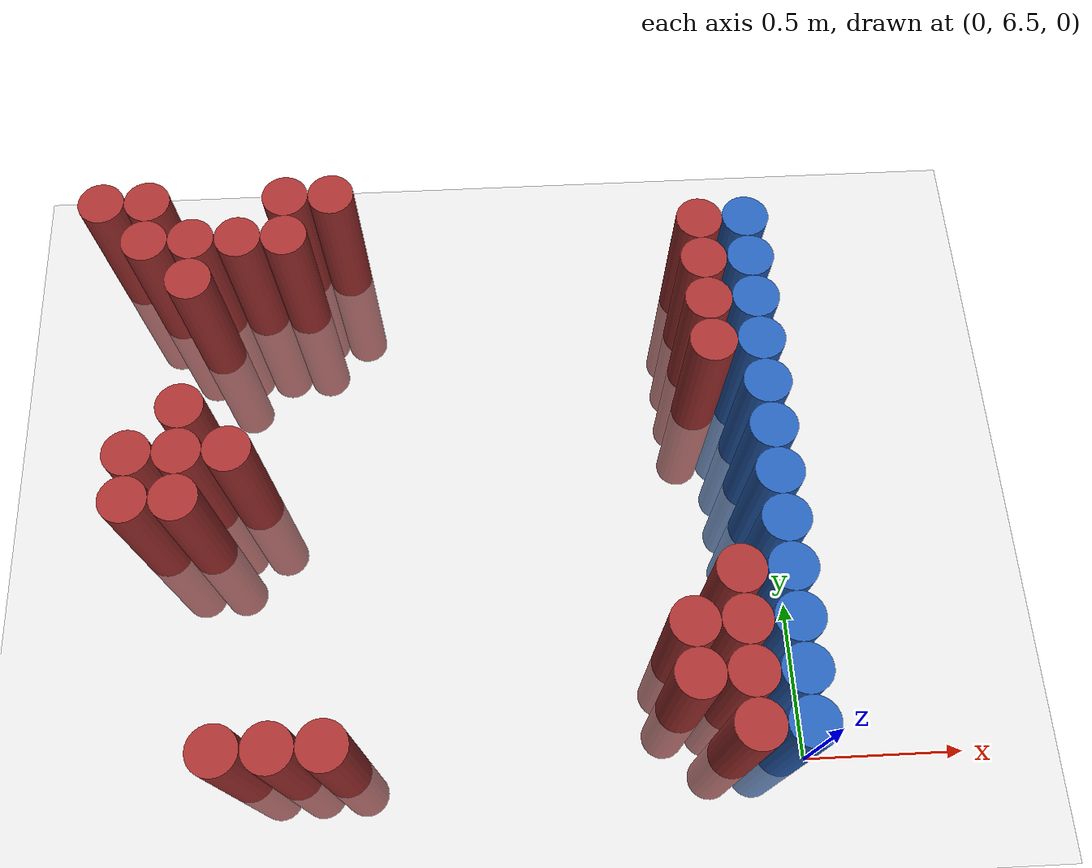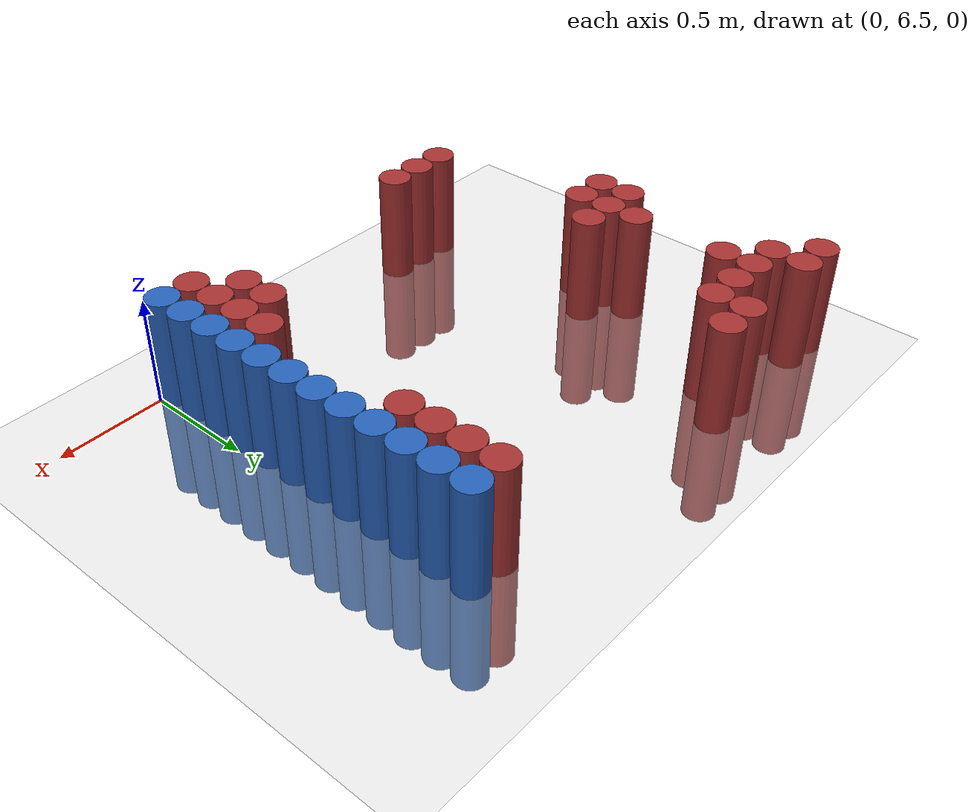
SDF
<sdf version="1.6">
 <world name="default">
  <model name="ground_plane">
   <static>1</static>
   <link name="link">
    <collision name="collision">
     <geometry><plane><normal>0 0 1</normal><size>100 100</size></plane></geometry>
     <surface><friction><ode><mu>100</mu><mu2>50</mu2></ode></friction></surface>
    </collision>
    <visual name="visual">
     <cast_shadows>0</cast_shadows>
     <geometry><plane><normal>0 0 1</normal><size>100 100</size></plane></geometry>
     <material>
      <script><uri>file://media/materials/scripts/gazebo.material</uri><name>Gazebo/Grey</name></script>
     </material>
    </visual>
   </link>
  </model>
  <model name="unit_cylinder_223">
   <static>1</static>
   <pose>-2.175000 8.325000 0.000000 0.000000 0.000000 0.000000</pose>
   <link name="link">
    <inertial>
     <mass>1</mass>
     <inertia><ixx>0.145833</ixx><ixy>0</ixy><ixz>0</ixz><iyy>0.145833</iyy><iyz>0</iyz><izz>0.125</izz></inertia>
    </inertial>
    <collision name="collision">
     <geometry><cylinder><radius>0.075000</radius><length>1</length></cylinder></geometry>
    </collision>
    <visual name="visual">
     <geometry><cylinder><radius>0.075000</radius><length>1</length></cylinder></geometry>
     <material>
      <ambient>0.648000 0.192000 0.192000 1</ambient>
      <diffuse>0.648000 0.192000 0.192000 1</diffuse>
     </material>
     <material>
      <script><name>Gazebo/Grey</name><uri>file://media/materials/scripts/gazebo.material</uri></script>
     </material>
    </visual>
    <sensor name="sensor_contact" type="contact"><contact><collision>collision</collision></contact></sensor>
   </link>
   <plugin filename="gz-sim-touchplugin-system" name="gz::sim::systems::TouchPlugin">
    <target>robot</target>
    <namespace>robot</namespace>
    <time>0.001</time>
    <enabled>true</enabled>
   </plugin>
  </model>
  <model name="unit_cylinder_227">
   <static>1</static>
   <pose>-2.025000 7.275000 0.000000 0.000000 0.000000 0.000000</pose>
   <link name="link">
    <inertial>
     <mass>1</mass>
     <inertia><ixx>0.145833</ixx><ixy>0</ixy><ixz>0</ixz><iyy>0.145833</iyy><iyz>0</iyz><izz>0.125</izz></inertia>
    </inertial>
    <collision name="collision">
     <geometry><cylinder><radius>0.075000</radius><length>1</length></cylinder></geometry>
    </collision>
    <visual name="visual">
     <geometry><cylinder><radius>0.075000</radius><length>1</length></cylinder></geometry>
     <material>
      <ambient>0.648000 0.192000 0.192000 1</ambient>
      <diffuse>0.648000 0.192000 0.192000 1</diffuse>
     </material>
     <material>
      <script><name>Gazebo/Grey</name><uri>file://media/materials/scripts/gazebo.material</uri></script>
     </material>
    </visual>
    <sensor name="sensor_contact" type="contact"><contact><collision>collision</collision></contact></sensor>
   </link>
   <plugin filename="gz-sim-touchplugin-system" name="gz::sim::systems::TouchPlugin">
    <target>robot</target>
    <namespace>robot</namespace>
    <time>0.001</time>
    <enabled>true</enabled>
   </plugin>
  </model>
  <model name="unit_cylinder_228">
   <static>1</static>
   <pose>-2.025000 7.425000 0.000000 0.000000 0.000000 0.000000</pose>
   <link name="link">
    <inertial>
     <mass>1</mass>
     <inertia><ixx>0.145833</ixx><ixy>0</ixy><ixz>0</ixz><iyy>0.145833</iyy><iyz>0</iyz><izz>0.125</izz></inertia>
    </inertial>
    <collision name="collision">
     <geometry><cylinder><radius>0.075000</radius><length>1</length></cylinder></geometry>
    </collision>
    <visual name="visual">
     <geometry><cylinder><radius>0.075000</radius><length>1</length></cylinder></geometry>
     <material>
      <ambient>0.648000 0.192000 0.192000 1</ambient>
      <diffuse>0.648000 0.192000 0.192000 1</diffuse>
     </material>
     <material>
      <script><name>Gazebo/Grey</name><uri>file://media/materials/scripts/gazebo.material</uri></script>
     </material>
    </visual>
    <sensor name="sensor_contact" type="contact"><contact><collision>collision</collision></contact></sensor>
   </link>
   <plugin filename="gz-sim-touchplugin-system" name="gz::sim::systems::TouchPlugin">
    <target>robot</target>
    <namespace>robot</namespace>
    <time>0.001</time>
    <enabled>true</enabled>
   </plugin>
  </model>
  <model name="unit_cylinder_229">
   <static>1</static>
   <pose>-2.025000 8.175000 0.000000 0.000000 0.000000 0.000000</pose>
   <link name="link">
    <inertial>
     <mass>1</mass>
     <inertia><ixx>0.145833</ixx><ixy>0</ixy><ixz>0</ixz><iyy>0.145833</iyy><iyz>0</iyz><izz>0.125</izz></inertia>
    </inertial>
    <collision name="collision">
     <geometry><cylinder><radius>0.075000</radius><length>1</length></cylinder></geometry>
    </collision>
    <visual name="visual">
     <geometry><cylinder><radius>0.075000</radius><length>1</length></cylinder></geometry>
     <material>
      <ambient>0.648000 0.192000 0.192000 1</ambient>
      <diffuse>0.648000 0.192000 0.192000 1</diffuse>
     </material>
     <material>
      <script><name>Gazebo/Grey</name><uri>file://media/materials/scripts/gazebo.material</uri></script>
     </material>
    </visual>
    <sensor name="sensor_contact" type="contact"><contact><collision>collision</collision></contact></sensor>
   </link>
   <plugin filename="gz-sim-touchplugin-system" name="gz::sim::systems::TouchPlugin">
    <target>robot</target>
    <namespace>robot</namespace>
    <time>0.001</time>
    <enabled>true</enabled>
   </plugin>
  </model>
  <model name="unit_cylinder_230">
   <static>1</static>
   <pose>-2.025000 8.325000 0.000000 0.000000 0.000000 0.000000</pose>
   <link name="link">
    <inertial>
     <mass>1</mass>
     <inertia><ixx>0.145833</ixx><ixy>0</ixy><ixz>0</ixz><iyy>0.145833</iyy><iyz>0</iyz><izz>0.125</izz></inertia>
    </inertial>
    <collision name="collision">
     <geometry><cylinder><radius>0.075000</radius><length>1</length></cylinder></geometry>
    </collision>
    <visual name="visual">
     <geometry><cylinder><radius>0.075000</radius><length>1</length></cylinder></geometry>
     <material>
      <ambient>0.648000 0.192000 0.192000 1</ambient>
      <diffuse>0.648000 0.192000 0.192000 1</diffuse>
     </material>
     <material>
      <script><name>Gazebo/Grey</name><uri>file://media/materials/scripts/gazebo.material</uri></script>
     </material>
    </visual>
    <sensor name="sensor_contact" type="contact"><contact><collision>collision</collision></contact></sensor>
   </link>
   <plugin filename="gz-sim-touchplugin-system" name="gz::sim::systems::TouchPlugin">
    <target>robot</target>
    <namespace>robot</namespace>
    <time>0.001</time>
    <enabled>true</enabled>
   </plugin>
  </model>
  <model name="unit_cylinder_236">
   <static>1</static>
   <pose>-1.875000 7.275000 0.000000 0.000000 0.000000 0.000000</pose>
   <link name="link">
    <inertial>
     <mass>1</mass>
     <inertia><ixx>0.145833</ixx><ixy>0</ixy><ixz>0</ixz><iyy>0.145833</iyy><iyz>0</iyz><izz>0.125</izz></inertia>
    </inertial>
    <collision name="collision">
     <geometry><cylinder><radius>0.075000</radius><length>1</length></cylinder></geometry>
    </collision>
    <visual name="visual">
     <geometry><cylinder><radius>0.075000</radius><length>1</length></cylinder></geometry>
     <material>
      <ambient>0.648000 0.192000 0.192000 1</ambient>
      <diffuse>0.648000 0.192000 0.192000 1</diffuse>
     </material>
     <material>
      <script><name>Gazebo/Grey</name><uri>file://media/materials/scripts/gazebo.material</uri></script>
     </material>
    </visual>
    <sensor name="sensor_contact" type="contact"><contact><collision>collision</collision></contact></sensor>
   </link>
   <plugin filename="gz-sim-touchplugin-system" name="gz::sim::systems::TouchPlugin">
    <target>robot</target>
    <namespace>robot</namespace>
    <time>0.001</time>
    <enabled>true</enabled>
   </plugin>
  </model>
  <model name="unit_cylinder_237">
   <static>1</static>
   <pose>-1.875000 7.425000 0.000000 0.000000 0.000000 0.000000</pose>
   <link name="link">
    <inertial>
     <mass>1</mass>
     <inertia><ixx>0.145833</ixx><ixy>0</ixy><ixz>0</ixz><iyy>0.145833</iyy><iyz>0</iyz><izz>0.125</izz></inertia>
    </inertial>
    <collision name="collision">
     <geometry><cylinder><radius>0.075000</radius><length>1</length></cylinder></geometry>
    </collision>
    <visual name="visual">
     <geometry><cylinder><radius>0.075000</radius><length>1</length></cylinder></geometry>
     <material>
      <ambient>0.648000 0.192000 0.192000 1</ambient>
      <diffuse>0.648000 0.192000 0.192000 1</diffuse>
     </material>
     <material>
      <script><name>Gazebo/Grey</name><uri>file://media/materials/scripts/gazebo.material</uri></script>
     </material>
    </visual>
    <sensor name="sensor_contact" type="contact"><contact><collision>collision</collision></contact></sensor>
   </link>
   <plugin filename="gz-sim-touchplugin-system" name="gz::sim::systems::TouchPlugin">
    <target>robot</target>
    <namespace>robot</namespace>
    <time>0.001</time>
    <enabled>true</enabled>
   </plugin>
  </model>
  <model name="unit_cylinder_238">
   <static>1</static>
   <pose>-1.875000 7.575000 0.000000 0.000000 0.000000 0.000000</pose>
   <link name="link">
    <inertial>
     <mass>1</mass>
     <inertia><ixx>0.145833</ixx><ixy>0</ixy><ixz>0</ixz><iyy>0.145833</iyy><iyz>0</iyz><izz>0.125</izz></inertia>
    </inertial>
    <collision name="collision">
     <geometry><cylinder><radius>0.075000</radius><length>1</length></cylinder></geometry>
    </collision>
    <visual name="visual">
     <geometry><cylinder><radius>0.075000</radius><length>1</length></cylinder></geometry>
     <material>
      <ambient>0.648000 0.192000 0.192000 1</ambient>
      <diffuse>0.648000 0.192000 0.192000 1</diffuse>
     </material>
     <material>
      <script><name>Gazebo/Grey</name><uri>file://media/materials/scripts/gazebo.material</uri></script>
     </material>
    </visual>
    <sensor name="sensor_contact" type="contact"><contact><collision>collision</collision></contact></sensor>
   </link>
   <plugin filename="gz-sim-touchplugin-system" name="gz::sim::systems::TouchPlugin">
    <target>robot</target>
    <namespace>robot</namespace>
    <time>0.001</time>
    <enabled>true</enabled>
   </plugin>
  </model>
  <model name="unit_cylinder_239">
   <static>1</static>
   <pose>-1.875000 8.025000 0.000000 0.000000 0.000000 0.000000</pose>
   <link name="link">
    <inertial>
     <mass>1</mass>
     <inertia><ixx>0.145833</ixx><ixy>0</ixy><ixz>0</ixz><iyy>0.145833</iyy><iyz>0</iyz><izz>0.125</izz></inertia>
    </inertial>
    <collision name="collision">
     <geometry><cylinder><radius>0.075000</radius><length>1</length></cylinder></geometry>
    </collision>
    <visual name="visual">
     <geometry><cylinder><radius>0.075000</radius><length>1</length></cylinder></geometry>
     <material>
      <ambient>0.648000 0.192000 0.192000 1</ambient>
      <diffuse>0.648000 0.192000 0.192000 1</diffuse>
     </material>
     <material>
      <script><name>Gazebo/Grey</name><uri>file://media/materials/scripts/gazebo.material</uri></script>
     </material>
    </visual>
    <sensor name="sensor_contact" type="contact"><contact><collision>collision</collision></contact></sensor>
   </link>
   <plugin filename="gz-sim-touchplugin-system" name="gz::sim::systems::TouchPlugin">
    <target>robot</target>
    <namespace>robot</namespace>
    <time>0.001</time>
    <enabled>true</enabled>
   </plugin>
  </model>
  <model name="unit_cylinder_240">
   <static>1</static>
   <pose>-1.875000 8.175000 0.000000 0.000000 0.000000 0.000000</pose>
   <link name="link">
    <inertial>
     <mass>1</mass>
     <inertia><ixx>0.145833</ixx><ixy>0</ixy><ixz>0</ixz><iyy>0.145833</iyy><iyz>0</iyz><izz>0.125</izz></inertia>
    </inertial>
    <collision name="collision">
     <geometry><cylinder><radius>0.075000</radius><length>1</length></cylinder></geometry>
    </collision>
    <visual name="visual">
     <geometry><cylinder><radius>0.075000</radius><length>1</length></cylinder></geometry>
     <material>
      <ambient>0.648000 0.192000 0.192000 1</ambient>
      <diffuse>0.648000 0.192000 0.192000 1</diffuse>
     </material>
     <material>
      <script><name>Gazebo/Grey</name><uri>file://media/materials/scripts/gazebo.material</uri></script>
     </material>
    </visual>
    <sensor name="sensor_contact" type="contact"><contact><collision>collision</collision></contact></sensor>
   </link>
   <plugin filename="gz-sim-touchplugin-system" name="gz::sim::systems::TouchPlugin">
    <target>robot</target>
    <namespace>robot</namespace>
    <time>0.001</time>
    <enabled>true</enabled>
   </plugin>
  </model>
  <model name="unit_cylinder_243">
   <static>1</static>
   <pose>-1.725000 6.525000 0.000000 0.000000 0.000000 0.000000</pose>
   <link name="link">
    <inertial>
     <mass>1</mass>
     <inertia><ixx>0.145833</ixx><ixy>0</ixy><ixz>0</ixz><iyy>0.145833</iyy><iyz>0</iyz><izz>0.125</izz></inertia>
    </inertial>
    <collision name="collision">
     <geometry><cylinder><radius>0.075000</radius><length>1</length></cylinder></geometry>
    </collision>
    <visual name="visual">
     <geometry><cylinder><radius>0.075000</radius><length>1</length></cylinder></geometry>
     <material>
      <ambient>0.648000 0.192000 0.192000 1</ambient>
      <diffuse>0.648000 0.192000 0.192000 1</diffuse>
     </material>
     <material>
      <script><name>Gazebo/Grey</name><uri>file://media/materials/scripts/gazebo.material</uri></script>
     </material>
    </visual>
    <sensor name="sensor_contact" type="contact"><contact><collision>collision</collision></contact></sensor>
   </link>
   <plugin filename="gz-sim-touchplugin-system" name="gz::sim::systems::TouchPlugin">
    <target>robot</target>
    <namespace>robot</namespace>
    <time>0.001</time>
    <enabled>true</enabled>
   </plugin>
  </model>
  <model name="unit_cylinder_244">
   <static>1</static>
   <pose>-1.725000 7.425000 0.000000 0.000000 0.000000 0.000000</pose>
   <link name="link">
    <inertial>
     <mass>1</mass>
     <inertia><ixx>0.145833</ixx><ixy>0</ixy><ixz>0</ixz><iyy>0.145833</iyy><iyz>0</iyz><izz>0.125</izz></inertia>
    </inertial>
    <collision name="collision">
     <geometry><cylinder><radius>0.075000</radius><length>1</length></cylinder></geometry>
    </collision>
    <visual name="visual">
     <geometry><cylinder><radius>0.075000</radius><length>1</length></cylinder></geometry>
     <material>
      <ambient>0.648000 0.192000 0.192000 1</ambient>
      <diffuse>0.648000 0.192000 0.192000 1</diffuse>
     </material>
     <material>
      <script><name>Gazebo/Grey</name><uri>file://media/materials/scripts/gazebo.material</uri></script>
     </material>
    </visual>
    <sensor name="sensor_contact" type="contact"><contact><collision>collision</collision></contact></sensor>
   </link>
   <plugin filename="gz-sim-touchplugin-system" name="gz::sim::systems::TouchPlugin">
    <target>robot</target>
    <namespace>robot</namespace>
    <time>0.001</time>
    <enabled>true</enabled>
   </plugin>
  </model>
  <model name="unit_cylinder_245">
   <static>1</static>
   <pose>-1.725000 8.175000 0.000000 0.000000 0.000000 0.000000</pose>
   <link name="link">
    <inertial>
     <mass>1</mass>
     <inertia><ixx>0.145833</ixx><ixy>0</ixy><ixz>0</ixz><iyy>0.145833</iyy><iyz>0</iyz><izz>0.125</izz></inertia>
    </inertial>
    <collision name="collision">
     <geometry><cylinder><radius>0.075000</radius><length>1</length></cylinder></geometry>
    </collision>
    <visual name="visual">
     <geometry><cylinder><radius>0.075000</radius><length>1</length></cylinder></geometry>
     <material>
      <ambient>0.648000 0.192000 0.192000 1</ambient>
      <diffuse>0.648000 0.192000 0.192000 1</diffuse>
     </material>
     <material>
      <script><name>Gazebo/Grey</name><uri>file://media/materials/scripts/gazebo.material</uri></script>
     </material>
    </visual>
    <sensor name="sensor_contact" type="contact"><contact><collision>collision</collision></contact></sensor>
   </link>
   <plugin filename="gz-sim-touchplugin-system" name="gz::sim::systems::TouchPlugin">
    <target>robot</target>
    <namespace>robot</namespace>
    <time>0.001</time>
    <enabled>true</enabled>
   </plugin>
  </model>
  <model name="unit_cylinder_249">
   <static>1</static>
   <pose>-1.575000 6.525000 0.000000 0.000000 0.000000 0.000000</pose>
   <link name="link">
    <inertial>
     <mass>1</mass>
     <inertia><ixx>0.145833</ixx><ixy>0</ixy><ixz>0</ixz><iyy>0.145833</iyy><iyz>0</iyz><izz>0.125</izz></inertia>
    </inertial>
    <collision name="collision">
     <geometry><cylinder><radius>0.075000</radius><length>1</length></cylinder></geometry>
    </collision>
    <visual name="visual">
     <geometry><cylinder><radius>0.075000</radius><length>1</length></cylinder></geometry>
     <material>
      <ambient>0.648000 0.192000 0.192000 1</ambient>
      <diffuse>0.648000 0.192000 0.192000 1</diffuse>
     </material>
     <material>
      <script><name>Gazebo/Grey</name><uri>file://media/materials/scripts/gazebo.material</uri></script>
     </material>
    </visual>
    <sensor name="sensor_contact" type="contact"><contact><collision>collision</collision></contact></sensor>
   </link>
   <plugin filename="gz-sim-touchplugin-system" name="gz::sim::systems::TouchPlugin">
    <target>robot</target>
    <namespace>robot</namespace>
    <time>0.001</time>
    <enabled>true</enabled>
   </plugin>
  </model>
  <model name="unit_cylinder_250">
   <static>1</static>
   <pose>-1.575000 8.175000 0.000000 0.000000 0.000000 0.000000</pose>
   <link name="link">
    <inertial>
     <mass>1</mass>
     <inertia><ixx>0.145833</ixx><ixy>0</ixy><ixz>0</ixz><iyy>0.145833</iyy><iyz>0</iyz><izz>0.125</izz></inertia>
    </inertial>
    <collision name="collision">
     <geometry><cylinder><radius>0.075000</radius><length>1</length></cylinder></geometry>
    </collision>
    <visual name="visual">
     <geometry><cylinder><radius>0.075000</radius><length>1</length></cylinder></geometry>
     <material>
      <ambient>0.648000 0.192000 0.192000 1</ambient>
      <diffuse>0.648000 0.192000 0.192000 1</diffuse>
     </material>
     <material>
      <script><name>Gazebo/Grey</name><uri>file://media/materials/scripts/gazebo.material</uri></script>
     </material>
    </visual>
    <sensor name="sensor_contact" type="contact"><contact><collision>collision</collision></contact></sensor>
   </link>
   <plugin filename="gz-sim-touchplugin-system" name="gz::sim::systems::TouchPlugin">
    <target>robot</target>
    <namespace>robot</namespace>
    <time>0.001</time>
    <enabled>true</enabled>
   </plugin>
  </model>
  <model name="unit_cylinder_251">
   <static>1</static>
   <pose>-1.575000 8.325000 0.000000 0.000000 0.000000 0.000000</pose>
   <link name="link">
    <inertial>
     <mass>1</mass>
     <inertia><ixx>0.145833</ixx><ixy>0</ixy><ixz>0</ixz><iyy>0.145833</iyy><iyz>0</iyz><izz>0.125</izz></inertia>
    </inertial>
    <collision name="collision">
     <geometry><cylinder><radius>0.075000</radius><length>1</length></cylinder></geometry>
    </collision>
    <visual name="visual">
     <geometry><cylinder><radius>0.075000</radius><length>1</length></cylinder></geometry>
     <material>
      <ambient>0.648000 0.192000 0.192000 1</ambient>
      <diffuse>0.648000 0.192000 0.192000 1</diffuse>
     </material>
     <material>
      <script><name>Gazebo/Grey</name><uri>file://media/materials/scripts/gazebo.material</uri></script>
     </material>
    </visual>
    <sensor name="sensor_contact" type="contact"><contact><collision>collision</collision></contact></sensor>
   </link>
   <plugin filename="gz-sim-touchplugin-system" name="gz::sim::systems::TouchPlugin">
    <target>robot</target>
    <namespace>robot</namespace>
    <time>0.001</time>
    <enabled>true</enabled>
   </plugin>
  </model>
  <model name="unit_cylinder_254">
   <static>1</static>
   <pose>-1.425000 6.525000 0.000000 0.000000 0.000000 0.000000</pose>
   <link name="link">
    <inertial>
     <mass>1</mass>
     <inertia><ixx>0.145833</ixx><ixy>0</ixy><ixz>0</ixz><iyy>0.145833</iyy><iyz>0</iyz><izz>0.125</izz></inertia>
    </inertial>
    <collision name="collision">
     <geometry><cylinder><radius>0.075000</radius><length>1</length></cylinder></geometry>
    </collision>
    <visual name="visual">
     <geometry><cylinder><radius>0.075000</radius><length>1</length></cylinder></geometry>
     <material>
      <ambient>0.648000 0.192000 0.192000 1</ambient>
      <diffuse>0.648000 0.192000 0.192000 1</diffuse>
     </material>
     <material>
      <script><name>Gazebo/Grey</name><uri>file://media/materials/scripts/gazebo.material</uri></script>
     </material>
    </visual>
    <sensor name="sensor_contact" type="contact"><contact><collision>collision</collision></contact></sensor>
   </link>
   <plugin filename="gz-sim-touchplugin-system" name="gz::sim::systems::TouchPlugin">
    <target>robot</target>
    <namespace>robot</namespace>
    <time>0.001</time>
    <enabled>true</enabled>
   </plugin>
  </model>
  <model name="unit_cylinder_255">
   <static>1</static>
   <pose>-1.425000 8.325000 0.000000 0.000000 0.000000 0.000000</pose>
   <link name="link">
    <inertial>
     <mass>1</mass>
     <inertia><ixx>0.145833</ixx><ixy>0</ixy><ixz>0</ixz><iyy>0.145833</iyy><iyz>0</iyz><izz>0.125</izz></inertia>
    </inertial>
    <collision name="collision">
     <geometry><cylinder><radius>0.075000</radius><length>1</length></cylinder></geometry>
    </collision>
    <visual name="visual">
     <geometry><cylinder><radius>0.075000</radius><length>1</length></cylinder></geometry>
     <material>
      <ambient>0.648000 0.192000 0.192000 1</ambient>
      <diffuse>0.648000 0.192000 0.192000 1</diffuse>
     </material>
     <material>
      <script><name>Gazebo/Grey</name><uri>file://media/materials/scripts/gazebo.material</uri></script>
     </material>
    </visual>
    <sensor name="sensor_contact" type="contact"><contact><collision>collision</collision></contact></sensor>
   </link>
   <plugin filename="gz-sim-touchplugin-system" name="gz::sim::systems::TouchPlugin">
    <target>robot</target>
    <namespace>robot</namespace>
    <time>0.001</time>
    <enabled>true</enabled>
   </plugin>
  </model>
  <model name="unit_cylinder_268">
   <static>1</static>
   <pose>-0.375000 6.675000 0.000000 0.000000 0.000000 0.000000</pose>
   <link name="link">
    <inertial>
     <mass>1</mass>
     <inertia><ixx>0.145833</ixx><ixy>0</ixy><ixz>0</ixz><iyy>0.145833</iyy><iyz>0</iyz><izz>0.125</izz></inertia>
    </inertial>
    <collision name="collision">
     <geometry><cylinder><radius>0.075000</radius><length>1</length></cylinder></geometry>
    </collision>
    <visual name="visual">
     <geometry><cylinder><radius>0.075000</radius><length>1</length></cylinder></geometry>
     <material>
      <ambient>0.648000 0.192000 0.192000 1</ambient>
      <diffuse>0.648000 0.192000 0.192000 1</diffuse>
     </material>
     <material>
      <script><name>Gazebo/Grey</name><uri>file://media/materials/scripts/gazebo.material</uri></script>
     </material>
    </visual>
    <sensor name="sensor_contact" type="contact"><contact><collision>collision</collision></contact></sensor>
   </link>
   <plugin filename="gz-sim-touchplugin-system" name="gz::sim::systems::TouchPlugin">
    <target>robot</target>
    <namespace>robot</namespace>
    <time>0.001</time>
    <enabled>true</enabled>
   </plugin>
  </model>
  <model name="unit_cylinder_269">
   <static>1</static>
   <pose>-0.375000 6.825000 0.000000 0.000000 0.000000 0.000000</pose>
   <link name="link">
    <inertial>
     <mass>1</mass>
     <inertia><ixx>0.145833</ixx><ixy>0</ixy><ixz>0</ixz><iyy>0.145833</iyy><iyz>0</iyz><izz>0.125</izz></inertia>
    </inertial>
    <collision name="collision">
     <geometry><cylinder><radius>0.075000</radius><length>1</length></cylinder></geometry>
    </collision>
    <visual name="visual">
     <geometry><cylinder><radius>0.075000</radius><length>1</length></cylinder></geometry>
     <material>
      <ambient>0.648000 0.192000 0.192000 1</ambient>
      <diffuse>0.648000 0.192000 0.192000 1</diffuse>
     </material>
     <material>
      <script><name>Gazebo/Grey</name><uri>file://media/materials/scripts/gazebo.material</uri></script>
     </material>
    </visual>
    <sensor name="sensor_contact" type="contact"><contact><collision>collision</collision></contact></sensor>
   </link>
   <plugin filename="gz-sim-touchplugin-system" name="gz::sim::systems::TouchPlugin">
    <target>robot</target>
    <namespace>robot</namespace>
    <time>0.001</time>
    <enabled>true</enabled>
   </plugin>
  </model>
  <model name="unit_cylinder_280">
   <static>1</static>
   <pose>-0.225000 6.525000 0.000000 0.000000 0.000000 0.000000</pose>
   <link name="link">
    <inertial>
     <mass>1</mass>
     <inertia><ixx>0.145833</ixx><ixy>0</ixy><ixz>0</ixz><iyy>0.145833</iyy><iyz>0</iyz><izz>0.125</izz></inertia>
    </inertial>
    <collision name="collision">
     <geometry><cylinder><radius>0.075000</radius><length>1</length></cylinder></geometry>
    </collision>
    <visual name="visual">
     <geometry><cylinder><radius>0.075000</radius><length>1</length></cylinder></geometry>
     <material>
      <ambient>0.648000 0.192000 0.192000 1</ambient>
      <diffuse>0.648000 0.192000 0.192000 1</diffuse>
     </material>
     <material>
      <script><name>Gazebo/Grey</name><uri>file://media/materials/scripts/gazebo.material</uri></script>
     </material>
    </visual>
    <sensor name="sensor_contact" type="contact"><contact><collision>collision</collision></contact></sensor>
   </link>
   <plugin filename="gz-sim-touchplugin-system" name="gz::sim::systems::TouchPlugin">
    <target>robot</target>
    <namespace>robot</namespace>
    <time>0.001</time>
    <enabled>true</enabled>
   </plugin>
  </model>
  <model name="unit_cylinder_281">
   <static>1</static>
   <pose>-0.225000 6.675000 0.000000 0.000000 0.000000 0.000000</pose>
   <link name="link">
    <inertial>
     <mass>1</mass>
     <inertia><ixx>0.145833</ixx><ixy>0</ixy><ixz>0</ixz><iyy>0.145833</iyy><iyz>0</iyz><izz>0.125</izz></inertia>
    </inertial>
    <collision name="collision">
     <geometry><cylinder><radius>0.075000</radius><length>1</length></cylinder></geometry>
    </collision>
    <visual name="visual">
     <geometry><cylinder><radius>0.075000</radius><length>1</length></cylinder></geometry>
     <material>
      <ambient>0.648000 0.192000 0.192000 1</ambient>
      <diffuse>0.648000 0.192000 0.192000 1</diffuse>
     </material>
     <material>
      <script><name>Gazebo/Grey</name><uri>file://media/materials/scripts/gazebo.material</uri></script>
     </material>
    </visual>
    <sensor name="sensor_contact" type="contact"><contact><collision>collision</collision></contact></sensor>
   </link>
   <plugin filename="gz-sim-touchplugin-system" name="gz::sim::systems::TouchPlugin">
    <target>robot</target>
    <namespace>robot</namespace>
    <time>0.001</time>
    <enabled>true</enabled>
   </plugin>
  </model>
  <model name="unit_cylinder_282">
   <static>1</static>
   <pose>-0.225000 6.825000 0.000000 0.000000 0.000000 0.000000</pose>
   <link name="link">
    <inertial>
     <mass>1</mass>
     <inertia><ixx>0.145833</ixx><ixy>0</ixy><ixz>0</ixz><iyy>0.145833</iyy><iyz>0</iyz><izz>0.125</izz></inertia>
    </inertial>
    <collision name="collision">
     <geometry><cylinder><radius>0.075000</radius><length>1</length></cylinder></geometry>
    </collision>
    <visual name="visual">
     <geometry><cylinder><radius>0.075000</radius><length>1</length></cylinder></geometry>
     <material>
      <ambient>0.648000 0.192000 0.192000 1</ambient>
      <diffuse>0.648000 0.192000 0.192000 1</diffuse>
     </material>
     <material>
      <script><name>Gazebo/Grey</name><uri>file://media/materials/scripts/gazebo.material</uri></script>
     </material>
    </visual>
    <sensor name="sensor_contact" type="contact"><contact><collision>collision</collision></contact></sensor>
   </link>
   <plugin filename="gz-sim-touchplugin-system" name="gz::sim::systems::TouchPlugin">
    <target>robot</target>
    <namespace>robot</namespace>
    <time>0.001</time>
    <enabled>true</enabled>
   </plugin>
  </model>
  <model name="unit_cylinder_283">
   <static>1</static>
   <pose>-0.225000 6.975000 0.000000 0.000000 0.000000 0.000000</pose>
   <link name="link">
    <inertial>
     <mass>1</mass>
     <inertia><ixx>0.145833</ixx><ixy>0</ixy><ixz>0</ixz><iyy>0.145833</iyy><iyz>0</iyz><izz>0.125</izz></inertia>
    </inertial>
    <collision name="collision">
     <geometry><cylinder><radius>0.075000</radius><length>1</length></cylinder></geometry>
    </collision>
    <visual name="visual">
     <geometry><cylinder><radius>0.075000</radius><length>1</length></cylinder></geometry>
     <material>
      <ambient>0.648000 0.192000 0.192000 1</ambient>
      <diffuse>0.648000 0.192000 0.192000 1</diffuse>
     </material>
     <material>
      <script><name>Gazebo/Grey</name><uri>file://media/materials/scripts/gazebo.material</uri></script>
     </material>
    </visual>
    <sensor name="sensor_contact" type="contact"><contact><collision>collision</collision></contact></sensor>
   </link>
   <plugin filename="gz-sim-touchplugin-system" name="gz::sim::systems::TouchPlugin">
    <target>robot</target>
    <namespace>robot</namespace>
    <time>0.001</time>
    <enabled>true</enabled>
   </plugin>
  </model>
  <model name="unit_cylinder_284">
   <static>1</static>
   <pose>-0.225000 7.725000 0.000000 0.000000 0.000000 0.000000</pose>
   <link name="link">
    <inertial>
     <mass>1</mass>
     <inertia><ixx>0.145833</ixx><ixy>0</ixy><ixz>0</ixz><iyy>0.145833</iyy><iyz>0</iyz><izz>0.125</izz></inertia>
    </inertial>
    <collision name="collision">
     <geometry><cylinder><radius>0.075000</radius><length>1</length></cylinder></geometry>
    </collision>
    <visual name="visual">
     <geometry><cylinder><radius>0.075000</radius><length>1</length></cylinder></geometry>
     <material>
      <ambient>0.648000 0.192000 0.192000 1</ambient>
      <diffuse>0.648000 0.192000 0.192000 1</diffuse>
     </material>
     <material>
      <script><name>Gazebo/Grey</name><uri>file://media/materials/scripts/gazebo.material</uri></script>
     </material>
    </visual>
    <sensor name="sensor_contact" type="contact"><contact><collision>collision</collision></contact></sensor>
   </link>
   <plugin filename="gz-sim-touchplugin-system" name="gz::sim::systems::TouchPlugin">
    <target>robot</target>
    <namespace>robot</namespace>
    <time>0.001</time>
    <enabled>true</enabled>
   </plugin>
  </model>
  <model name="unit_cylinder_285">
   <static>1</static>
   <pose>-0.225000 7.875000 0.000000 0.000000 0.000000 0.000000</pose>
   <link name="link">
    <inertial>
     <mass>1</mass>
     <inertia><ixx>0.145833</ixx><ixy>0</ixy><ixz>0</ixz><iyy>0.145833</iyy><iyz>0</iyz><izz>0.125</izz></inertia>
    </inertial>
    <collision name="collision">
     <geometry><cylinder><radius>0.075000</radius><length>1</length></cylinder></geometry>
    </collision>
    <visual name="visual">
     <geometry><cylinder><radius>0.075000</radius><length>1</length></cylinder></geometry>
     <material>
      <ambient>0.648000 0.192000 0.192000 1</ambient>
      <diffuse>0.648000 0.192000 0.192000 1</diffuse>
     </material>
     <material>
      <script><name>Gazebo/Grey</name><uri>file://media/materials/scripts/gazebo.material</uri></script>
     </material>
    </visual>
    <sensor name="sensor_contact" type="contact"><contact><collision>collision</collision></contact></sensor>
   </link>
   <plugin filename="gz-sim-touchplugin-system" name="gz::sim::systems::TouchPlugin">
    <target>robot</target>
    <namespace>robot</namespace>
    <time>0.001</time>
    <enabled>true</enabled>
   </plugin>
  </model>
  <model name="unit_cylinder_286">
   <static>1</static>
   <pose>-0.225000 8.025000 0.000000 0.000000 0.000000 0.000000</pose>
   <link name="link">
    <inertial>
     <mass>1</mass>
     <inertia><ixx>0.145833</ixx><ixy>0</ixy><ixz>0</ixz><iyy>0.145833</iyy><iyz>0</iyz><izz>0.125</izz></inertia>
    </inertial>
    <collision name="collision">
     <geometry><cylinder><radius>0.075000</radius><length>1</length></cylinder></geometry>
    </collision>
    <visual name="visual">
     <geometry><cylinder><radius>0.075000</radius><length>1</length></cylinder></geometry>
     <material>
      <ambient>0.648000 0.192000 0.192000 1</ambient>
      <diffuse>0.648000 0.192000 0.192000 1</diffuse>
     </material>
     <material>
      <script><name>Gazebo/Grey</name><uri>file://media/materials/scripts/gazebo.material</uri></script>
     </material>
    </visual>
    <sensor name="sensor_contact" type="contact"><contact><collision>collision</collision></contact></sensor>
   </link>
   <plugin filename="gz-sim-touchplugin-system" name="gz::sim::systems::TouchPlugin">
    <target>robot</target>
    <namespace>robot</namespace>
    <time>0.001</time>
    <enabled>true</enabled>
   </plugin>
  </model>
  <model name="unit_cylinder_287">
   <static>1</static>
   <pose>-0.225000 8.175000 0.000000 0.000000 0.000000 0.000000</pose>
   <link name="link">
    <inertial>
     <mass>1</mass>
     <inertia><ixx>0.145833</ixx><ixy>0</ixy><ixz>0</ixz><iyy>0.145833</iyy><iyz>0</iyz><izz>0.125</izz></inertia>
    </inertial>
    <collision name="collision">
     <geometry><cylinder><radius>0.075000</radius><length>1</length></cylinder></geometry>
    </collision>
    <visual name="visual">
     <geometry><cylinder><radius>0.075000</radius><length>1</length></cylinder></geometry>
     <material>
      <ambient>0.648000 0.192000 0.192000 1</ambient>
      <diffuse>0.648000 0.192000 0.192000 1</diffuse>
     </material>
     <material>
      <script><name>Gazebo/Grey</name><uri>file://media/materials/scripts/gazebo.material</uri></script>
     </material>
    </visual>
    <sensor name="sensor_contact" type="contact"><contact><collision>collision</collision></contact></sensor>
   </link>
   <plugin filename="gz-sim-touchplugin-system" name="gz::sim::systems::TouchPlugin">
    <target>robot</target>
    <namespace>robot</namespace>
    <time>0.001</time>
    <enabled>true</enabled>
   </plugin>
  </model>
  <model name="unit_cylinder_302">
   <static>1</static>
   <pose>-0.075000 6.525000 0.000000 0.000000 0.000000 0.000000</pose>
   <link name="link">
    <inertial>
     <mass>1</mass>
     <inertia><ixx>0.145833</ixx><ixy>0</ixy><ixz>0</ixz><iyy>0.145833</iyy><iyz>0</iyz><izz>0.125</izz></inertia>
    </inertial>
    <collision name="collision">
     <geometry><cylinder><radius>0.075000</radius><length>1</length></cylinder></geometry>
    </collision>
    <visual name="visual">
     <geometry><cylinder><radius>0.075000</radius><length>1</length></cylinder></geometry>
     <material>
      <ambient>0.152000 0.379000 0.720000 1</ambient>
      <diffuse>0.152000 0.379000 0.720000 1</diffuse>
     </material>
     <material>
      <script><name>Gazebo/Grey</name><uri>file://media/materials/scripts/gazebo.material</uri></script>
     </material>
    </visual>
    <sensor name="sensor_contact" type="contact"><contact><collision>collision</collision></contact></sensor>
   </link>
   <plugin filename="gz-sim-touchplugin-system" name="gz::sim::systems::TouchPlugin">
    <target>robot</target>
    <namespace>robot</namespace>
    <time>0.001</time>
    <enabled>true</enabled>
   </plugin>
  </model>
  <model name="unit_cylinder_303">
   <static>1</static>
   <pose>-0.075000 6.675000 0.000000 0.000000 0.000000 0.000000</pose>
   <link name="link">
    <inertial>
     <mass>1</mass>
     <inertia><ixx>0.145833</ixx><ixy>0</ixy><ixz>0</ixz><iyy>0.145833</iyy><iyz>0</iyz><izz>0.125</izz></inertia>
    </inertial>
    <collision name="collision">
     <geometry><cylinder><radius>0.075000</radius><length>1</length></cylinder></geometry>
    </collision>
    <visual name="visual">
     <geometry><cylinder><radius>0.075000</radius><length>1</length></cylinder></geometry>
     <material>
      <ambient>0.152000 0.379000 0.720000 1</ambient>
      <diffuse>0.152000 0.379000 0.720000 1</diffuse>
     </material>
     <material>
      <script><name>Gazebo/Grey</name><uri>file://media/materials/scripts/gazebo.material</uri></script>
     </material>
    </visual>
    <sensor name="sensor_contact" type="contact"><contact><collision>collision</collision></contact></sensor>
   </link>
   <plugin filename="gz-sim-touchplugin-system" name="gz::sim::systems::TouchPlugin">
    <target>robot</target>
    <namespace>robot</namespace>
    <time>0.001</time>
    <enabled>true</enabled>
   </plugin>
  </model>
  <model name="unit_cylinder_304">
   <static>1</static>
   <pose>-0.075000 6.825000 0.000000 0.000000 0.000000 0.000000</pose>
   <link name="link">
    <inertial>
     <mass>1</mass>
     <inertia><ixx>0.145833</ixx><ixy>0</ixy><ixz>0</ixz><iyy>0.145833</iyy><iyz>0</iyz><izz>0.125</izz></inertia>
    </inertial>
    <collision name="collision">
     <geometry><cylinder><radius>0.075000</radius><length>1</length></cylinder></geometry>
    </collision>
    <visual name="visual">
     <geometry><cylinder><radius>0.075000</radius><length>1</length></cylinder></geometry>
     <material>
      <ambient>0.152000 0.379000 0.720000 1</ambient>
      <diffuse>0.152000 0.379000 0.720000 1</diffuse>
     </material>
     <material>
      <script><name>Gazebo/Grey</name><uri>file://media/materials/scripts/gazebo.material</uri></script>
     </material>
    </visual>
    <sensor name="sensor_contact" type="contact"><contact><collision>collision</collision></contact></sensor>
   </link>
   <plugin filename="gz-sim-touchplugin-system" name="gz::sim::systems::TouchPlugin">
    <target>robot</target>
    <namespace>robot</namespace>
    <time>0.001</time>
    <enabled>true</enabled>
   </plugin>
  </model>
  <model name="unit_cylinder_305">
   <static>1</static>
   <pose>-0.075000 6.975000 0.000000 0.000000 0.000000 0.000000</pose>
   <link name="link">
    <inertial>
     <mass>1</mass>
     <inertia><ixx>0.145833</ixx><ixy>0</ixy><ixz>0</ixz><iyy>0.145833</iyy><iyz>0</iyz><izz>0.125</izz></inertia>
    </inertial>
    <collision name="collision">
     <geometry><cylinder><radius>0.075000</radius><length>1</length></cylinder></geometry>
    </collision>
    <visual name="visual">
     <geometry><cylinder><radius>0.075000</radius><length>1</length></cylinder></geometry>
     <material>
      <ambient>0.152000 0.379000 0.720000 1</ambient>
      <diffuse>0.152000 0.379000 0.720000 1</diffuse>
     </material>
     <material>
      <script><name>Gazebo/Grey</name><uri>file://media/materials/scripts/gazebo.material</uri></script>
     </material>
    </visual>
    <sensor name="sensor_contact" type="contact"><contact><collision>collision</collision></contact></sensor>
   </link>
   <plugin filename="gz-sim-touchplugin-system" name="gz::sim::systems::TouchPlugin">
    <target>robot</target>
    <namespace>robot</namespace>
    <time>0.001</time>
    <enabled>true</enabled>
   </plugin>
  </model>
  <model name="unit_cylinder_306">
   <static>1</static>
   <pose>-0.075000 7.125000 0.000000 0.000000 0.000000 0.000000</pose>
   <link name="link">
    <inertial>
     <mass>1</mass>
     <inertia><ixx>0.145833</ixx><ixy>0</ixy><ixz>0</ixz><iyy>0.145833</iyy><iyz>0</iyz><izz>0.125</izz></inertia>
    </inertial>
    <collision name="collision">
     <geometry><cylinder><radius>0.075000</radius><length>1</length></cylinder></geometry>
    </collision>
    <visual name="visual">
     <geometry><cylinder><radius>0.075000</radius><length>1</length></cylinder></geometry>
     <material>
      <ambient>0.152000 0.379000 0.720000 1</ambient>
      <diffuse>0.152000 0.379000 0.720000 1</diffuse>
     </material>
     <material>
      <script><name>Gazebo/Grey</name><uri>file://media/materials/scripts/gazebo.material</uri></script>
     </material>
    </visual>
    <sensor name="sensor_contact" type="contact"><contact><collision>collision</collision></contact></sensor>
   </link>
   <plugin filename="gz-sim-touchplugin-system" name="gz::sim::systems::TouchPlugin">
    <target>robot</target>
    <namespace>robot</namespace>
    <time>0.001</time>
    <enabled>true</enabled>
   </plugin>
  </model>
  <model name="unit_cylinder_307">
   <static>1</static>
   <pose>-0.075000 7.275000 0.000000 0.000000 0.000000 0.000000</pose>
   <link name="link">
    <inertial>
     <mass>1</mass>
     <inertia><ixx>0.145833</ixx><ixy>0</ixy><ixz>0</ixz><iyy>0.145833</iyy><iyz>0</iyz><izz>0.125</izz></inertia>
    </inertial>
    <collision name="collision">
     <geometry><cylinder><radius>0.075000</radius><length>1</length></cylinder></geometry>
    </collision>
    <visual name="visual">
     <geometry><cylinder><radius>0.075000</radius><length>1</length></cylinder></geometry>
     <material>
      <ambient>0.152000 0.379000 0.720000 1</ambient>
      <diffuse>0.152000 0.379000 0.720000 1</diffuse>
     </material>
     <material>
      <script><name>Gazebo/Grey</name><uri>file://media/materials/scripts/gazebo.material</uri></script>
     </material>
    </visual>
    <sensor name="sensor_contact" type="contact"><contact><collision>collision</collision></contact></sensor>
   </link>
   <plugin filename="gz-sim-touchplugin-system" name="gz::sim::systems::TouchPlugin">
    <target>robot</target>
    <namespace>robot</namespace>
    <time>0.001</time>
    <enabled>true</enabled>
   </plugin>
  </model>
  <model name="unit_cylinder_308">
   <static>1</static>
   <pose>-0.075000 7.425000 0.000000 0.000000 0.000000 0.000000</pose>
   <link name="link">
    <inertial>
     <mass>1</mass>
     <inertia><ixx>0.145833</ixx><ixy>0</ixy><ixz>0</ixz><iyy>0.145833</iyy><iyz>0</iyz><izz>0.125</izz></inertia>
    </inertial>
    <collision name="collision">
     <geometry><cylinder><radius>0.075000</radius><length>1</length></cylinder></geometry>
    </collision>
    <visual name="visual">
     <geometry><cylinder><radius>0.075000</radius><length>1</length></cylinder></geometry>
     <material>
      <ambient>0.152000 0.379000 0.720000 1</ambient>
      <diffuse>0.152000 0.379000 0.720000 1</diffuse>
     </material>
     <material>
      <script><name>Gazebo/Grey</name><uri>file://media/materials/scripts/gazebo.material</uri></script>
     </material>
    </visual>
    <sensor name="sensor_contact" type="contact"><contact><collision>collision</collision></contact></sensor>
   </link>
   <plugin filename="gz-sim-touchplugin-system" name="gz::sim::systems::TouchPlugin">
    <target>robot</target>
    <namespace>robot</namespace>
    <time>0.001</time>
    <enabled>true</enabled>
   </plugin>
  </model>
  <model name="unit_cylinder_309">
   <static>1</static>
   <pose>-0.075000 7.575000 0.000000 0.000000 0.000000 0.000000</pose>
   <link name="link">
    <inertial>
     <mass>1</mass>
     <inertia><ixx>0.145833</ixx><ixy>0</ixy><ixz>0</ixz><iyy>0.145833</iyy><iyz>0</iyz><izz>0.125</izz></inertia>
    </inertial>
    <collision name="collision">
     <geometry><cylinder><radius>0.075000</radius><length>1</length></cylinder></geometry>
    </collision>
    <visual name="visual">
     <geometry><cylinder><radius>0.075000</radius><length>1</length></cylinder></geometry>
     <material>
      <ambient>0.152000 0.379000 0.720000 1</ambient>
      <diffuse>0.152000 0.379000 0.720000 1</diffuse>
     </material>
     <material>
      <script><name>Gazebo/Grey</name><uri>file://media/materials/scripts/gazebo.material</uri></script>
     </material>
    </visual>
    <sensor name="sensor_contact" type="contact"><contact><collision>collision</collision></contact></sensor>
   </link>
   <plugin filename="gz-sim-touchplugin-system" name="gz::sim::systems::TouchPlugin">
    <target>robot</target>
    <namespace>robot</namespace>
    <time>0.001</time>
    <enabled>true</enabled>
   </plugin>
  </model>
  <model name="unit_cylinder_310">
   <static>1</static>
   <pose>-0.075000 7.725000 0.000000 0.000000 0.000000 0.000000</pose>
   <link name="link">
    <inertial>
     <mass>1</mass>
     <inertia><ixx>0.145833</ixx><ixy>0</ixy><ixz>0</ixz><iyy>0.145833</iyy><iyz>0</iyz><izz>0.125</izz></inertia>
    </inertial>
    <collision name="collision">
     <geometry><cylinder><radius>0.075000</radius><length>1</length></cylinder></geometry>
    </collision>
    <visual name="visual">
     <geometry><cylinder><radius>0.075000</radius><length>1</length></cylinder></geometry>
     <material>
      <ambient>0.152000 0.379000 0.720000 1</ambient>
      <diffuse>0.152000 0.379000 0.720000 1</diffuse>
     </material>
     <material>
      <script><name>Gazebo/Grey</name><uri>file://media/materials/scripts/gazebo.material</uri></script>
     </material>
    </visual>
    <sensor name="sensor_contact" type="contact"><contact><collision>collision</collision></contact></sensor>
   </link>
   <plugin filename="gz-sim-touchplugin-system" name="gz::sim::systems::TouchPlugin">
    <target>robot</target>
    <namespace>robot</namespace>
    <time>0.001</time>
    <enabled>true</enabled>
   </plugin>
  </model>
  <model name="unit_cylinder_311">
   <static>1</static>
   <pose>-0.075000 7.875000 0.000000 0.000000 0.000000 0.000000</pose>
   <link name="link">
    <inertial>
     <mass>1</mass>
     <inertia><ixx>0.145833</ixx><ixy>0</ixy><ixz>0</ixz><iyy>0.145833</iyy><iyz>0</iyz><izz>0.125</izz></inertia>
    </inertial>
    <collision name="collision">
     <geometry><cylinder><radius>0.075000</radius><length>1</length></cylinder></geometry>
    </collision>
    <visual name="visual">
     <geometry><cylinder><radius>0.075000</radius><length>1</length></cylinder></geometry>
     <material>
      <ambient>0.152000 0.379000 0.720000 1</ambient>
      <diffuse>0.152000 0.379000 0.720000 1</diffuse>
     </material>
     <material>
      <script><name>Gazebo/Grey</name><uri>file://media/materials/scripts/gazebo.material</uri></script>
     </material>
    </visual>
    <sensor name="sensor_contact" type="contact"><contact><collision>collision</collision></contact></sensor>
   </link>
   <plugin filename="gz-sim-touchplugin-system" name="gz::sim::systems::TouchPlugin">
    <target>robot</target>
    <namespace>robot</namespace>
    <time>0.001</time>
    <enabled>true</enabled>
   </plugin>
  </model>
  <model name="unit_cylinder_312">
   <static>1</static>
   <pose>-0.075000 8.025000 0.000000 0.000000 0.000000 0.000000</pose>
   <link name="link">
    <inertial>
     <mass>1</mass>
     <inertia><ixx>0.145833</ixx><ixy>0</ixy><ixz>0</ixz><iyy>0.145833</iyy><iyz>0</iyz><izz>0.125</izz></inertia>
    </inertial>
    <collision name="collision">
     <geometry><cylinder><radius>0.075000</radius><length>1</length></cylinder></geometry>
    </collision>
    <visual name="visual">
     <geometry><cylinder><radius>0.075000</radius><length>1</length></cylinder></geometry>
     <material>
      <ambient>0.152000 0.379000 0.720000 1</ambient>
      <diffuse>0.152000 0.379000 0.720000 1</diffuse>
     </material>
     <material>
      <script><name>Gazebo/Grey</name><uri>file://media/materials/scripts/gazebo.material</uri></script>
     </material>
    </visual>
    <sensor name="sensor_contact" type="contact"><contact><collision>collision</collision></contact></sensor>
   </link>
   <plugin filename="gz-sim-touchplugin-system" name="gz::sim::systems::TouchPlugin">
    <target>robot</target>
    <namespace>robot</namespace>
    <time>0.001</time>
    <enabled>true</enabled>
   </plugin>
  </model>
  <model name="unit_cylinder_313">
   <static>1</static>
   <pose>-0.075000 8.175000 0.000000 0.000000 0.000000 0.000000</pose>
   <link name="link">
    <inertial>
     <mass>1</mass>
     <inertia><ixx>0.145833</ixx><ixy>0</ixy><ixz>0</ixz><iyy>0.145833</iyy><iyz>0</iyz><izz>0.125</izz></inertia>
    </inertial>
    <collision name="collision">
     <geometry><cylinder><radius>0.075000</radius><length>1</length></cylinder></geometry>
    </collision>
    <visual name="visual">
     <geometry><cylinder><radius>0.075000</radius><length>1</length></cylinder></geometry>
     <material>
      <ambient>0.152000 0.379000 0.720000 1</ambient>
      <diffuse>0.152000 0.379000 0.720000 1</diffuse>
     </material>
     <material>
      <script><name>Gazebo/Grey</name><uri>file://media/materials/scripts/gazebo.material</uri></script>
     </material>
    </visual>
    <sensor name="sensor_contact" type="contact"><contact><collision>collision</collision></contact></sensor>
   </link>
   <plugin filename="gz-sim-touchplugin-system" name="gz::sim::systems::TouchPlugin">
    <target>robot</target>
    <namespace>robot</namespace>
    <time>0.001</time>
    <enabled>true</enabled>
   </plugin>
  </model>
 </world>
</sdf>
